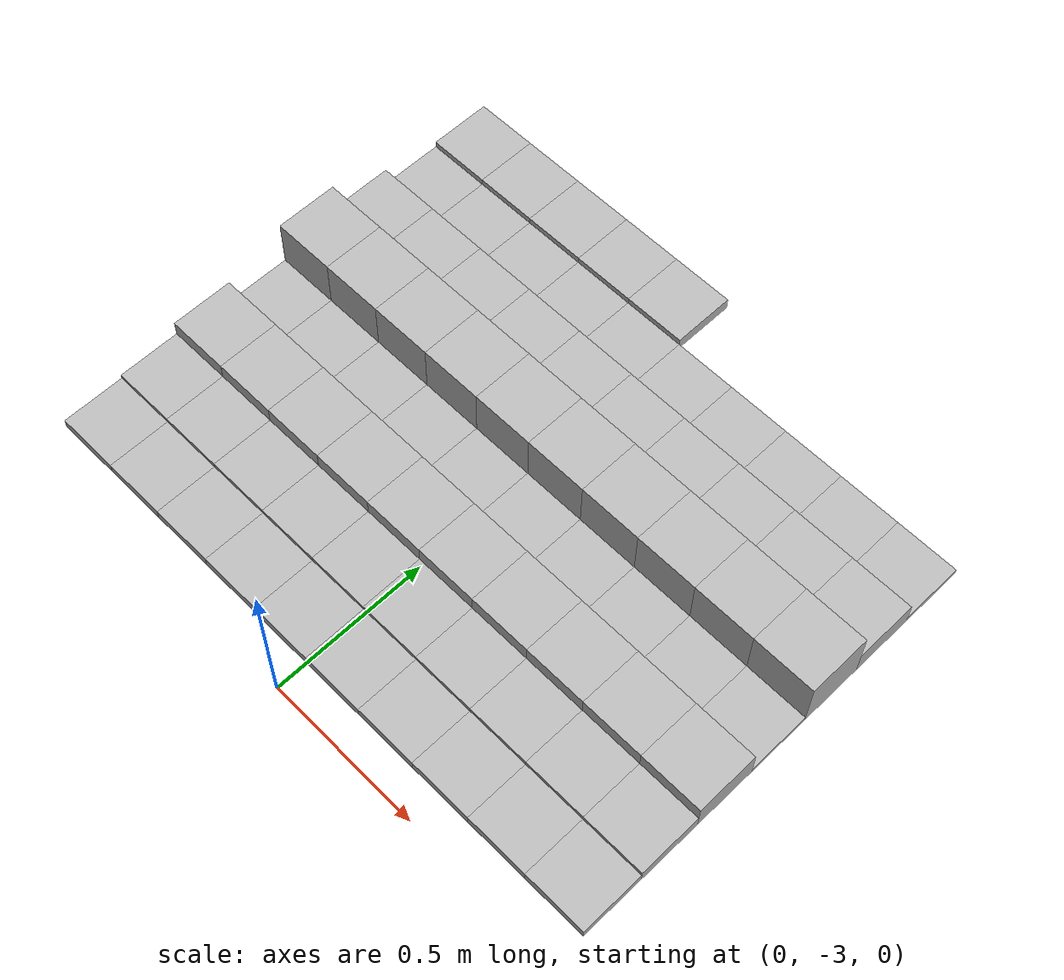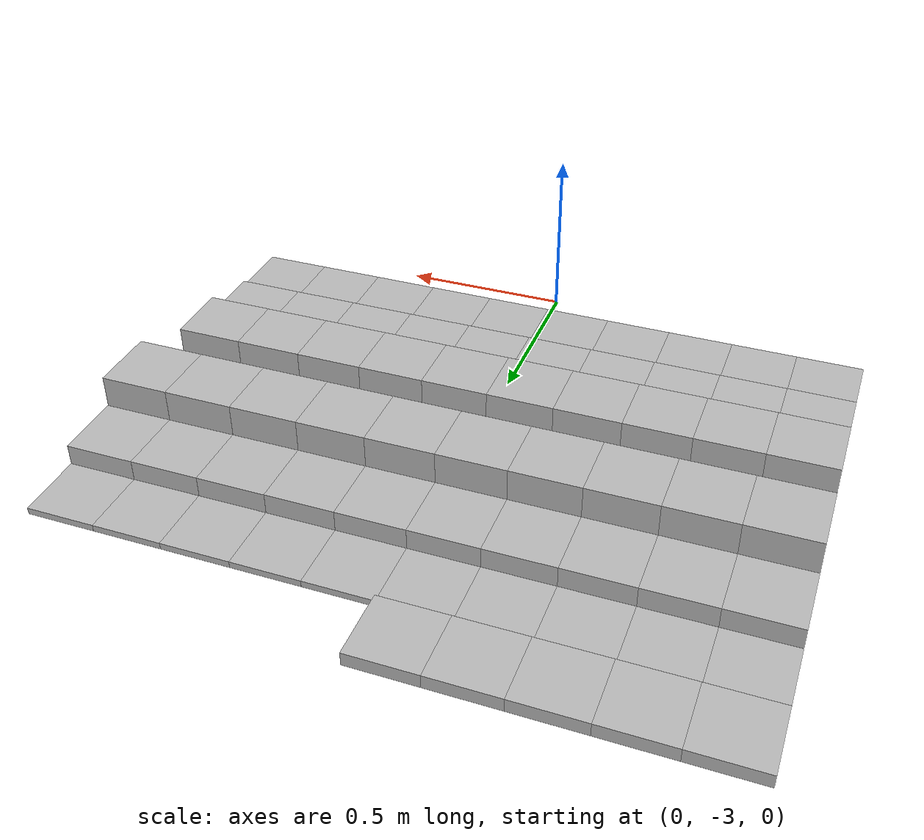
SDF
<sdf version="1.6">
 <model name="Terrain">
  <static>true</static>
  <link name="box_7_0">
   <pose>-0.9 -1.4 0.0198817768 0 0 0</pose>
   <inertial>
    <mass>1.0</mass>
    <inertia><ixx>0.0</ixx><ixy>0.0</ixy><ixz>0.0</ixz><iyy>0.0</iyy><iyz>0.0</iyz><izz>0.0</izz></inertia>
   </inertial>
   <collision name="collision"><geometry><box><size>0.2 0.2 0.0397635536</size></box></geometry></collision>
   <visual name="visual"><geometry><box><size>0.2 0.2 0.0397635536</size></box></geometry></visual>
  </link>
  <link name="box_7_1">
   <pose>-0.7 -1.4 0.0198817768 0 0 0</pose>
   <inertial>
    <mass>1.0</mass>
    <inertia><ixx>0.0</ixx><ixy>0.0</ixy><ixz>0.0</ixz><iyy>0.0</iyy><iyz>0.0</iyz><izz>0.0</izz></inertia>
   </inertial>
   <collision name="collision"><geometry><box><size>0.2 0.2 0.0397635536</size></box></geometry></collision>
   <visual name="visual"><geometry><box><size>0.2 0.2 0.0397635536</size></box></geometry></visual>
  </link>
  <link name="box_7_2">
   <pose>-0.5 -1.4 0.0198817768 0 0 0</pose>
   <inertial>
    <mass>1.0</mass>
    <inertia><ixx>0.0</ixx><ixy>0.0</ixy><ixz>0.0</ixz><iyy>0.0</iyy><iyz>0.0</iyz><izz>0.0</izz></inertia>
   </inertial>
   <collision name="collision"><geometry><box><size>0.2 0.2 0.0397635536</size></box></geometry></collision>
   <visual name="visual"><geometry><box><size>0.2 0.2 0.0397635536</size></box></geometry></visual>
  </link>
  <link name="box_7_3">
   <pose>-0.3 -1.4 0.0198817768 0 0 0</pose>
   <inertial>
    <mass>1.0</mass>
    <inertia><ixx>0.0</ixx><ixy>0.0</ixy><ixz>0.0</ixz><iyy>0.0</iyy><iyz>0.0</iyz><izz>0.0</izz></inertia>
   </inertial>
   <collision name="collision"><geometry><box><size>0.2 0.2 0.0397635536</size></box></geometry></collision>
   <visual name="visual"><geometry><box><size>0.2 0.2 0.0397635536</size></box></geometry></visual>
  </link>
  <link name="box_7_4">
   <pose>-0.1 -1.4 0.0198817768 0 0 0</pose>
   <inertial>
    <mass>1.0</mass>
    <inertia><ixx>0.0</ixx><ixy>0.0</ixy><ixz>0.0</ixz><iyy>0.0</iyy><iyz>0.0</iyz><izz>0.0</izz></inertia>
   </inertial>
   <collision name="collision"><geometry><box><size>0.2 0.2 0.0397635536</size></box></geometry></collision>
   <visual name="visual"><geometry><box><size>0.2 0.2 0.0397635536</size></box></geometry></visual>
  </link>
  <link name="box_8_0">
   <pose>-0.9 -1.6 0.00974434359942 0 0 0</pose>
   <inertial>
    <mass>1.0</mass>
    <inertia><ixx>0.0</ixx><ixy>0.0</ixy><ixz>0.0</ixz><iyy>0.0</iyy><iyz>0.0</iyz><izz>0.0</izz></inertia>
   </inertial>
   <collision name="collision"><geometry><box><size>0.2 0.2 0.0194886871988</size></box></geometry></collision>
   <visual name="visual"><geometry><box><size>0.2 0.2 0.0194886871988</size></box></geometry></visual>
  </link>
  <link name="box_8_1">
   <pose>-0.7 -1.6 0.00974434359942 0 0 0</pose>
   <inertial>
    <mass>1.0</mass>
    <inertia><ixx>0.0</ixx><ixy>0.0</ixy><ixz>0.0</ixz><iyy>0.0</iyy><iyz>0.0</iyz><izz>0.0</izz></inertia>
   </inertial>
   <collision name="collision"><geometry><box><size>0.2 0.2 0.0194886871988</size></box></geometry></collision>
   <visual name="visual"><geometry><box><size>0.2 0.2 0.0194886871988</size></box></geometry></visual>
  </link>
  <link name="box_8_2">
   <pose>-0.5 -1.6 0.00974434359942 0 0 0</pose>
   <inertial>
    <mass>1.0</mass>
    <inertia><ixx>0.0</ixx><ixy>0.0</ixy><ixz>0.0</ixz><iyy>0.0</iyy><iyz>0.0</iyz><izz>0.0</izz></inertia>
   </inertial>
   <collision name="collision"><geometry><box><size>0.2 0.2 0.0194886871988</size></box></geometry></collision>
   <visual name="visual"><geometry><box><size>0.2 0.2 0.0194886871988</size></box></geometry></visual>
  </link>
  <link name="box_8_3">
   <pose>-0.3 -1.6 0.00974434359942 0 0 0</pose>
   <inertial>
    <mass>1.0</mass>
    <inertia><ixx>0.0</ixx><ixy>0.0</ixy><ixz>0.0</ixz><iyy>0.0</iyy><iyz>0.0</iyz><izz>0.0</izz></inertia>
   </inertial>
   <collision name="collision"><geometry><box><size>0.2 0.2 0.0194886871988</size></box></geometry></collision>
   <visual name="visual"><geometry><box><size>0.2 0.2 0.0194886871988</size></box></geometry></visual>
  </link>
  <link name="box_8_4">
   <pose>-0.1 -1.6 0.00974434359942 0 0 0</pose>
   <inertial>
    <mass>1.0</mass>
    <inertia><ixx>0.0</ixx><ixy>0.0</ixy><ixz>0.0</ixz><iyy>0.0</iyy><iyz>0.0</iyz><izz>0.0</izz></inertia>
   </inertial>
   <collision name="collision"><geometry><box><size>0.2 0.2 0.0194886871988</size></box></geometry></collision>
   <visual name="visual"><geometry><box><size>0.2 0.2 0.0194886871988</size></box></geometry></visual>
  </link>
  <link name="box_8_5">
   <pose>0.1 -1.6 0.00974434359942 0 0 0</pose>
   <inertial>
    <mass>1.0</mass>
    <inertia><ixx>0.0</ixx><ixy>0.0</ixy><ixz>0.0</ixz><iyy>0.0</iyy><iyz>0.0</iyz><izz>0.0</izz></inertia>
   </inertial>
   <collision name="collision"><geometry><box><size>0.2 0.2 0.0194886871988</size></box></geometry></collision>
   <visual name="visual"><geometry><box><size>0.2 0.2 0.0194886871988</size></box></geometry></visual>
  </link>
  <link name="box_8_6">
   <pose>0.3 -1.6 0.00974434359942 0 0 0</pose>
   <inertial>
    <mass>1.0</mass>
    <inertia><ixx>0.0</ixx><ixy>0.0</ixy><ixz>0.0</ixz><iyy>0.0</iyy><iyz>0.0</iyz><izz>0.0</izz></inertia>
   </inertial>
   <collision name="collision"><geometry><box><size>0.2 0.2 0.0194886871988</size></box></geometry></collision>
   <visual name="visual"><geometry><box><size>0.2 0.2 0.0194886871988</size></box></geometry></visual>
  </link>
  <link name="box_8_7">
   <pose>0.5 -1.6 0.00974434359942 0 0 0</pose>
   <inertial>
    <mass>1.0</mass>
    <inertia><ixx>0.0</ixx><ixy>0.0</ixy><ixz>0.0</ixz><iyy>0.0</iyy><iyz>0.0</iyz><izz>0.0</izz></inertia>
   </inertial>
   <collision name="collision"><geometry><box><size>0.2 0.2 0.0194886871988</size></box></geometry></collision>
   <visual name="visual"><geometry><box><size>0.2 0.2 0.0194886871988</size></box></geometry></visual>
  </link>
  <link name="box_8_8">
   <pose>0.7 -1.6 0.00974434359942 0 0 0</pose>
   <inertial>
    <mass>1.0</mass>
    <inertia><ixx>0.0</ixx><ixy>0.0</ixy><ixz>0.0</ixz><iyy>0.0</iyy><iyz>0.0</iyz><izz>0.0</izz></inertia>
   </inertial>
   <collision name="collision"><geometry><box><size>0.2 0.2 0.0194886871988</size></box></geometry></collision>
   <visual name="visual"><geometry><box><size>0.2 0.2 0.0194886871988</size></box></geometry></visual>
  </link>
  <link name="box_8_9">
   <pose>0.9 -1.6 0.00974434359942 0 0 0</pose>
   <inertial>
    <mass>1.0</mass>
    <inertia><ixx>0.0</ixx><ixy>0.0</ixy><ixz>0.0</ixz><iyy>0.0</iyy><iyz>0.0</iyz><izz>0.0</izz></inertia>
   </inertial>
   <collision name="collision"><geometry><box><size>0.2 0.2 0.0194886871988</size></box></geometry></collision>
   <visual name="visual"><geometry><box><size>0.2 0.2 0.0194886871988</size></box></geometry></visual>
  </link>
  <link name="box_9_0">
   <pose>-0.9 -1.8 0.0403597626849 0 0 0</pose>
   <inertial>
    <mass>1.0</mass>
    <inertia><ixx>0.0</ixx><ixy>0.0</ixy><ixz>0.0</ixz><iyy>0.0</iyy><iyz>0.0</iyz><izz>0.0</izz></inertia>
   </inertial>
   <collision name="collision"><geometry><box><size>0.2 0.2 0.0807195253699</size></box></geometry></collision>
   <visual name="visual"><geometry><box><size>0.2 0.2 0.0807195253699</size></box></geometry></visual>
  </link>
  <link name="box_9_1">
   <pose>-0.7 -1.8 0.0403597626849 0 0 0</pose>
   <inertial>
    <mass>1.0</mass>
    <inertia><ixx>0.0</ixx><ixy>0.0</ixy><ixz>0.0</ixz><iyy>0.0</iyy><iyz>0.0</iyz><izz>0.0</izz></inertia>
   </inertial>
   <collision name="collision"><geometry><box><size>0.2 0.2 0.0807195253699</size></box></geometry></collision>
   <visual name="visual"><geometry><box><size>0.2 0.2 0.0807195253699</size></box></geometry></visual>
  </link>
  <link name="box_9_2">
   <pose>-0.5 -1.8 0.0403597626849 0 0 0</pose>
   <inertial>
    <mass>1.0</mass>
    <inertia><ixx>0.0</ixx><ixy>0.0</ixy><ixz>0.0</ixz><iyy>0.0</iyy><iyz>0.0</iyz><izz>0.0</izz></inertia>
   </inertial>
   <collision name="collision"><geometry><box><size>0.2 0.2 0.0807195253699</size></box></geometry></collision>
   <visual name="visual"><geometry><box><size>0.2 0.2 0.0807195253699</size></box></geometry></visual>
  </link>
  <link name="box_9_3">
   <pose>-0.3 -1.8 0.0403597626849 0 0 0</pose>
   <inertial>
    <mass>1.0</mass>
    <inertia><ixx>0.0</ixx><ixy>0.0</ixy><ixz>0.0</ixz><iyy>0.0</iyy><iyz>0.0</iyz><izz>0.0</izz></inertia>
   </inertial>
   <collision name="collision"><geometry><box><size>0.2 0.2 0.0807195253699</size></box></geometry></collision>
   <visual name="visual"><geometry><box><size>0.2 0.2 0.0807195253699</size></box></geometry></visual>
  </link>
  <link name="box_9_4">
   <pose>-0.1 -1.8 0.0403597626849 0 0 0</pose>
   <inertial>
    <mass>1.0</mass>
    <inertia><ixx>0.0</ixx><ixy>0.0</ixy><ixz>0.0</ixz><iyy>0.0</iyy><iyz>0.0</iyz><izz>0.0</izz></inertia>
   </inertial>
   <collision name="collision"><geometry><box><size>0.2 0.2 0.0807195253699</size></box></geometry></collision>
   <visual name="visual"><geometry><box><size>0.2 0.2 0.0807195253699</size></box></geometry></visual>
  </link>
  <link name="box_9_5">
   <pose>0.1 -1.8 0.0403597626849 0 0 0</pose>
   <inertial>
    <mass>1.0</mass>
    <inertia><ixx>0.0</ixx><ixy>0.0</ixy><ixz>0.0</ixz><iyy>0.0</iyy><iyz>0.0</iyz><izz>0.0</izz></inertia>
   </inertial>
   <collision name="collision"><geometry><box><size>0.2 0.2 0.0807195253699</size></box></geometry></collision>
   <visual name="visual"><geometry><box><size>0.2 0.2 0.0807195253699</size></box></geometry></visual>
  </link>
  <link name="box_9_6">
   <pose>0.3 -1.8 0.0403597626849 0 0 0</pose>
   <inertial>
    <mass>1.0</mass>
    <inertia><ixx>0.0</ixx><ixy>0.0</ixy><ixz>0.0</ixz><iyy>0.0</iyy><iyz>0.0</iyz><izz>0.0</izz></inertia>
   </inertial>
   <collision name="collision"><geometry><box><size>0.2 0.2 0.0807195253699</size></box></geometry></collision>
   <visual name="visual"><geometry><box><size>0.2 0.2 0.0807195253699</size></box></geometry></visual>
  </link>
  <link name="box_9_7">
   <pose>0.5 -1.8 0.0403597626849 0 0 0</pose>
   <inertial>
    <mass>1.0</mass>
    <inertia><ixx>0.0</ixx><ixy>0.0</ixy><ixz>0.0</ixz><iyy>0.0</iyy><iyz>0.0</iyz><izz>0.0</izz></inertia>
   </inertial>
   <collision name="collision"><geometry><box><size>0.2 0.2 0.0807195253699</size></box></geometry></collision>
   <visual name="visual"><geometry><box><size>0.2 0.2 0.0807195253699</size></box></geometry></visual>
  </link>
  <link name="box_9_8">
   <pose>0.7 -1.8 0.0403597626849 0 0 0</pose>
   <inertial>
    <mass>1.0</mass>
    <inertia><ixx>0.0</ixx><ixy>0.0</ixy><ixz>0.0</ixz><iyy>0.0</iyy><iyz>0.0</iyz><izz>0.0</izz></inertia>
   </inertial>
   <collision name="collision"><geometry><box><size>0.2 0.2 0.0807195253699</size></box></geometry></collision>
   <visual name="visual"><geometry><box><size>0.2 0.2 0.0807195253699</size></box></geometry></visual>
  </link>
  <link name="box_9_9">
   <pose>0.9 -1.8 0.0403597626849 0 0 0</pose>
   <inertial>
    <mass>1.0</mass>
    <inertia><ixx>0.0</ixx><ixy>0.0</ixy><ixz>0.0</ixz><iyy>0.0</iyy><iyz>0.0</iyz><izz>0.0</izz></inertia>
   </inertial>
   <collision name="collision"><geometry><box><size>0.2 0.2 0.0807195253699</size></box></geometry></collision>
   <visual name="visual"><geometry><box><size>0.2 0.2 0.0807195253699</size></box></geometry></visual>
  </link>
  <link name="box_10_0">
   <pose>-0.9 -2.0 0.0879328409259 0 0 0</pose>
   <inertial>
    <mass>1.0</mass>
    <inertia><ixx>0.0</ixx><ixy>0.0</ixy><ixz>0.0</ixz><iyy>0.0</iyy><iyz>0.0</iyz><izz>0.0</izz></inertia>
   </inertial>
   <collision name="collision"><geometry><box><size>0.2 0.2 0.175865681852</size></box></geometry></collision>
   <visual name="visual"><geometry><box><size>0.2 0.2 0.175865681852</size></box></geometry></visual>
  </link>
  <link name="box_10_1">
   <pose>-0.7 -2.0 0.0879328409259 0 0 0</pose>
   <inertial>
    <mass>1.0</mass>
    <inertia><ixx>0.0</ixx><ixy>0.0</ixy><ixz>0.0</ixz><iyy>0.0</iyy><iyz>0.0</iyz><izz>0.0</izz></inertia>
   </inertial>
   <collision name="collision"><geometry><box><size>0.2 0.2 0.175865681852</size></box></geometry></collision>
   <visual name="visual"><geometry><box><size>0.2 0.2 0.175865681852</size></box></geometry></visual>
  </link>
  <link name="box_10_2">
   <pose>-0.5 -2.0 0.0879328409259 0 0 0</pose>
   <inertial>
    <mass>1.0</mass>
    <inertia><ixx>0.0</ixx><ixy>0.0</ixy><ixz>0.0</ixz><iyy>0.0</iyy><iyz>0.0</iyz><izz>0.0</izz></inertia>
   </inertial>
   <collision name="collision"><geometry><box><size>0.2 0.2 0.175865681852</size></box></geometry></collision>
   <visual name="visual"><geometry><box><size>0.2 0.2 0.175865681852</size></box></geometry></visual>
  </link>
  <link name="box_10_3">
   <pose>-0.3 -2.0 0.0879328409259 0 0 0</pose>
   <inertial>
    <mass>1.0</mass>
    <inertia><ixx>0.0</ixx><ixy>0.0</ixy><ixz>0.0</ixz><iyy>0.0</iyy><iyz>0.0</iyz><izz>0.0</izz></inertia>
   </inertial>
   <collision name="collision"><geometry><box><size>0.2 0.2 0.175865681852</size></box></geometry></collision>
   <visual name="visual"><geometry><box><size>0.2 0.2 0.175865681852</size></box></geometry></visual>
  </link>
  <link name="box_10_4">
   <pose>-0.1 -2.0 0.0879328409259 0 0 0</pose>
   <inertial>
    <mass>1.0</mass>
    <inertia><ixx>0.0</ixx><ixy>0.0</ixy><ixz>0.0</ixz><iyy>0.0</iyy><iyz>0.0</iyz><izz>0.0</izz></inertia>
   </inertial>
   <collision name="collision"><geometry><box><size>0.2 0.2 0.175865681852</size></box></geometry></collision>
   <visual name="visual"><geometry><box><size>0.2 0.2 0.175865681852</size></box></geometry></visual>
  </link>
  <link name="box_10_5">
   <pose>0.1 -2.0 0.0879328409259 0 0 0</pose>
   <inertial>
    <mass>1.0</mass>
    <inertia><ixx>0.0</ixx><ixy>0.0</ixy><ixz>0.0</ixz><iyy>0.0</iyy><iyz>0.0</iyz><izz>0.0</izz></inertia>
   </inertial>
   <collision name="collision"><geometry><box><size>0.2 0.2 0.175865681852</size></box></geometry></collision>
   <visual name="visual"><geometry><box><size>0.2 0.2 0.175865681852</size></box></geometry></visual>
  </link>
  <link name="box_10_6">
   <pose>0.3 -2.0 0.0879328409259 0 0 0</pose>
   <inertial>
    <mass>1.0</mass>
    <inertia><ixx>0.0</ixx><ixy>0.0</ixy><ixz>0.0</ixz><iyy>0.0</iyy><iyz>0.0</iyz><izz>0.0</izz></inertia>
   </inertial>
   <collision name="collision"><geometry><box><size>0.2 0.2 0.175865681852</size></box></geometry></collision>
   <visual name="visual"><geometry><box><size>0.2 0.2 0.175865681852</size></box></geometry></visual>
  </link>
  <link name="box_10_7">
   <pose>0.5 -2.0 0.0879328409259 0 0 0</pose>
   <inertial>
    <mass>1.0</mass>
    <inertia><ixx>0.0</ixx><ixy>0.0</ixy><ixz>0.0</ixz><iyy>0.0</iyy><iyz>0.0</iyz><izz>0.0</izz></inertia>
   </inertial>
   <collision name="collision"><geometry><box><size>0.2 0.2 0.175865681852</size></box></geometry></collision>
   <visual name="visual"><geometry><box><size>0.2 0.2 0.175865681852</size></box></geometry></visual>
  </link>
  <link name="box_10_8">
   <pose>0.7 -2.0 0.0879328409259 0 0 0</pose>
   <inertial>
    <mass>1.0</mass>
    <inertia><ixx>0.0</ixx><ixy>0.0</ixy><ixz>0.0</ixz><iyy>0.0</iyy><iyz>0.0</iyz><izz>0.0</izz></inertia>
   </inertial>
   <collision name="collision"><geometry><box><size>0.2 0.2 0.175865681852</size></box></geometry></collision>
   <visual name="visual"><geometry><box><size>0.2 0.2 0.175865681852</size></box></geometry></visual>
  </link>
  <link name="box_10_9">
   <pose>0.9 -2.0 0.0879328409259 0 0 0</pose>
   <inertial>
    <mass>1.0</mass>
    <inertia><ixx>0.0</ixx><ixy>0.0</ixy><ixz>0.0</ixz><iyy>0.0</iyy><iyz>0.0</iyz><izz>0.0</izz></inertia>
   </inertial>
   <collision name="collision"><geometry><box><size>0.2 0.2 0.175865681852</size></box></geometry></collision>
   <visual name="visual"><geometry><box><size>0.2 0.2 0.175865681852</size></box></geometry></visual>
  </link>
  <link name="box_11_0">
   <pose>-0.9 -2.2 0.00774697874785 0 0 0</pose>
   <inertial>
    <mass>1.0</mass>
    <inertia><ixx>0.0</ixx><ixy>0.0</ixy><ixz>0.0</ixz><iyy>0.0</iyy><iyz>0.0</iyz><izz>0.0</izz></inertia>
   </inertial>
   <collision name="collision"><geometry><box><size>0.2 0.2 0.0154939574957</size></box></geometry></collision>
   <visual name="visual"><geometry><box><size>0.2 0.2 0.0154939574957</size></box></geometry></visual>
  </link>
  <link name="box_11_1">
   <pose>-0.7 -2.2 0.00774697874785 0 0 0</pose>
   <inertial>
    <mass>1.0</mass>
    <inertia><ixx>0.0</ixx><ixy>0.0</ixy><ixz>0.0</ixz><iyy>0.0</iyy><iyz>0.0</iyz><izz>0.0</izz></inertia>
   </inertial>
   <collision name="collision"><geometry><box><size>0.2 0.2 0.0154939574957</size></box></geometry></collision>
   <visual name="visual"><geometry><box><size>0.2 0.2 0.0154939574957</size></box></geometry></visual>
  </link>
  <link name="box_11_2">
   <pose>-0.5 -2.2 0.00774697874785 0 0 0</pose>
   <inertial>
    <mass>1.0</mass>
    <inertia><ixx>0.0</ixx><ixy>0.0</ixy><ixz>0.0</ixz><iyy>0.0</iyy><iyz>0.0</iyz><izz>0.0</izz></inertia>
   </inertial>
   <collision name="collision"><geometry><box><size>0.2 0.2 0.0154939574957</size></box></geometry></collision>
   <visual name="visual"><geometry><box><size>0.2 0.2 0.0154939574957</size></box></geometry></visual>
  </link>
  <link name="box_11_3">
   <pose>-0.3 -2.2 0.00774697874785 0 0 0</pose>
   <inertial>
    <mass>1.0</mass>
    <inertia><ixx>0.0</ixx><ixy>0.0</ixy><ixz>0.0</ixz><iyy>0.0</iyy><iyz>0.0</iyz><izz>0.0</izz></inertia>
   </inertial>
   <collision name="collision"><geometry><box><size>0.2 0.2 0.0154939574957</size></box></geometry></collision>
   <visual name="visual"><geometry><box><size>0.2 0.2 0.0154939574957</size></box></geometry></visual>
  </link>
  <link name="box_11_4">
   <pose>-0.1 -2.2 0.00774697874785 0 0 0</pose>
   <inertial>
    <mass>1.0</mass>
    <inertia><ixx>0.0</ixx><ixy>0.0</ixy><ixz>0.0</ixz><iyy>0.0</iyy><iyz>0.0</iyz><izz>0.0</izz></inertia>
   </inertial>
   <collision name="collision"><geometry><box><size>0.2 0.2 0.0154939574957</size></box></geometry></collision>
   <visual name="visual"><geometry><box><size>0.2 0.2 0.0154939574957</size></box></geometry></visual>
  </link>
  <link name="box_11_5">
   <pose>0.1 -2.2 0.00774697874785 0 0 0</pose>
   <inertial>
    <mass>1.0</mass>
    <inertia><ixx>0.0</ixx><ixy>0.0</ixy><ixz>0.0</ixz><iyy>0.0</iyy><iyz>0.0</iyz><izz>0.0</izz></inertia>
   </inertial>
   <collision name="collision"><geometry><box><size>0.2 0.2 0.0154939574957</size></box></geometry></collision>
   <visual name="visual"><geometry><box><size>0.2 0.2 0.0154939574957</size></box></geometry></visual>
  </link>
  <link name="box_11_6">
   <pose>0.3 -2.2 0.00774697874785 0 0 0</pose>
   <inertial>
    <mass>1.0</mass>
    <inertia><ixx>0.0</ixx><ixy>0.0</ixy><ixz>0.0</ixz><iyy>0.0</iyy><iyz>0.0</iyz><izz>0.0</izz></inertia>
   </inertial>
   <collision name="collision"><geometry><box><size>0.2 0.2 0.0154939574957</size></box></geometry></collision>
   <visual name="visual"><geometry><box><size>0.2 0.2 0.0154939574957</size></box></geometry></visual>
  </link>
  <link name="box_11_7">
   <pose>0.5 -2.2 0.00774697874785 0 0 0</pose>
   <inertial>
    <mass>1.0</mass>
    <inertia><ixx>0.0</ixx><ixy>0.0</ixy><ixz>0.0</ixz><iyy>0.0</iyy><iyz>0.0</iyz><izz>0.0</izz></inertia>
   </inertial>
   <collision name="collision"><geometry><box><size>0.2 0.2 0.0154939574957</size></box></geometry></collision>
   <visual name="visual"><geometry><box><size>0.2 0.2 0.0154939574957</size></box></geometry></visual>
  </link>
  <link name="box_11_8">
   <pose>0.7 -2.2 0.00774697874785 0 0 0</pose>
   <inertial>
    <mass>1.0</mass>
    <inertia><ixx>0.0</ixx><ixy>0.0</ixy><ixz>0.0</ixz><iyy>0.0</iyy><iyz>0.0</iyz><izz>0.0</izz></inertia>
   </inertial>
   <collision name="collision"><geometry><box><size>0.2 0.2 0.0154939574957</size></box></geometry></collision>
   <visual name="visual"><geometry><box><size>0.2 0.2 0.0154939574957</size></box></geometry></visual>
  </link>
  <link name="box_11_9">
   <pose>0.9 -2.2 0.00774697874785 0 0 0</pose>
   <inertial>
    <mass>1.0</mass>
    <inertia><ixx>0.0</ixx><ixy>0.0</ixy><ixz>0.0</ixz><iyy>0.0</iyy><iyz>0.0</iyz><izz>0.0</izz></inertia>
   </inertial>
   <collision name="collision"><geometry><box><size>0.2 0.2 0.0154939574957</size></box></geometry></collision>
   <visual name="visual"><geometry><box><size>0.2 0.2 0.0154939574957</size></box></geometry></visual>
  </link>
  <link name="box_12_0">
   <pose>-0.9 -2.4 0.048160367487 0 0 0</pose>
   <inertial>
    <mass>1.0</mass>
    <inertia><ixx>0.0</ixx><ixy>0.0</ixy><ixz>0.0</ixz><iyy>0.0</iyy><iyz>0.0</iyz><izz>0.0</izz></inertia>
   </inertial>
   <collision name="collision"><geometry><box><size>0.2 0.2 0.0963207349739</size></box></geometry></collision>
   <visual name="visual"><geometry><box><size>0.2 0.2 0.0963207349739</size></box></geometry></visual>
  </link>
  <link name="box_12_1">
   <pose>-0.7 -2.4 0.048160367487 0 0 0</pose>
   <inertial>
    <mass>1.0</mass>
    <inertia><ixx>0.0</ixx><ixy>0.0</ixy><ixz>0.0</ixz><iyy>0.0</iyy><iyz>0.0</iyz><izz>0.0</izz></inertia>
   </inertial>
   <collision name="collision"><geometry><box><size>0.2 0.2 0.0963207349739</size></box></geometry></collision>
   <visual name="visual"><geometry><box><size>0.2 0.2 0.0963207349739</size></box></geometry></visual>
  </link>
  <link name="box_12_2">
   <pose>-0.5 -2.4 0.048160367487 0 0 0</pose>
   <inertial>
    <mass>1.0</mass>
    <inertia><ixx>0.0</ixx><ixy>0.0</ixy><ixz>0.0</ixz><iyy>0.0</iyy><iyz>0.0</iyz><izz>0.0</izz></inertia>
   </inertial>
   <collision name="collision"><geometry><box><size>0.2 0.2 0.0963207349739</size></box></geometry></collision>
   <visual name="visual"><geometry><box><size>0.2 0.2 0.0963207349739</size></box></geometry></visual>
  </link>
  <link name="box_12_3">
   <pose>-0.3 -2.4 0.048160367487 0 0 0</pose>
   <inertial>
    <mass>1.0</mass>
    <inertia><ixx>0.0</ixx><ixy>0.0</ixy><ixz>0.0</ixz><iyy>0.0</iyy><iyz>0.0</iyz><izz>0.0</izz></inertia>
   </inertial>
   <collision name="collision"><geometry><box><size>0.2 0.2 0.0963207349739</size></box></geometry></collision>
   <visual name="visual"><geometry><box><size>0.2 0.2 0.0963207349739</size></box></geometry></visual>
  </link>
  <link name="box_12_4">
   <pose>-0.1 -2.4 0.048160367487 0 0 0</pose>
   <inertial>
    <mass>1.0</mass>
    <inertia><ixx>0.0</ixx><ixy>0.0</ixy><ixz>0.0</ixz><iyy>0.0</iyy><iyz>0.0</iyz><izz>0.0</izz></inertia>
   </inertial>
   <collision name="collision"><geometry><box><size>0.2 0.2 0.0963207349739</size></box></geometry></collision>
   <visual name="visual"><geometry><box><size>0.2 0.2 0.0963207349739</size></box></geometry></visual>
  </link>
  <link name="box_12_5">
   <pose>0.1 -2.4 0.048160367487 0 0 0</pose>
   <inertial>
    <mass>1.0</mass>
    <inertia><ixx>0.0</ixx><ixy>0.0</ixy><ixz>0.0</ixz><iyy>0.0</iyy><iyz>0.0</iyz><izz>0.0</izz></inertia>
   </inertial>
   <collision name="collision"><geometry><box><size>0.2 0.2 0.0963207349739</size></box></geometry></collision>
   <visual name="visual"><geometry><box><size>0.2 0.2 0.0963207349739</size></box></geometry></visual>
  </link>
  <link name="box_12_6">
   <pose>0.3 -2.4 0.048160367487 0 0 0</pose>
   <inertial>
    <mass>1.0</mass>
    <inertia><ixx>0.0</ixx><ixy>0.0</ixy><ixz>0.0</ixz><iyy>0.0</iyy><iyz>0.0</iyz><izz>0.0</izz></inertia>
   </inertial>
   <collision name="collision"><geometry><box><size>0.2 0.2 0.0963207349739</size></box></geometry></collision>
   <visual name="visual"><geometry><box><size>0.2 0.2 0.0963207349739</size></box></geometry></visual>
  </link>
  <link name="box_12_7">
   <pose>0.5 -2.4 0.048160367487 0 0 0</pose>
   <inertial>
    <mass>1.0</mass>
    <inertia><ixx>0.0</ixx><ixy>0.0</ixy><ixz>0.0</ixz><iyy>0.0</iyy><iyz>0.0</iyz><izz>0.0</izz></inertia>
   </inertial>
   <collision name="collision"><geometry><box><size>0.2 0.2 0.0963207349739</size></box></geometry></collision>
   <visual name="visual"><geometry><box><size>0.2 0.2 0.0963207349739</size></box></geometry></visual>
  </link>
  <link name="box_12_8">
   <pose>0.7 -2.4 0.048160367487 0 0 0</pose>
   <inertial>
    <mass>1.0</mass>
    <inertia><ixx>0.0</ixx><ixy>0.0</ixy><ixz>0.0</ixz><iyy>0.0</iyy><iyz>0.0</iyz><izz>0.0</izz></inertia>
   </inertial>
   <collision name="collision"><geometry><box><size>0.2 0.2 0.0963207349739</size></box></geometry></collision>
   <visual name="visual"><geometry><box><size>0.2 0.2 0.0963207349739</size></box></geometry></visual>
  </link>
  <link name="box_12_9">
   <pose>0.9 -2.4 0.048160367487 0 0 0</pose>
   <inertial>
    <mass>1.0</mass>
    <inertia><ixx>0.0</ixx><ixy>0.0</ixy><ixz>0.0</ixz><iyy>0.0</iyy><iyz>0.0</iyz><izz>0.0</izz></inertia>
   </inertial>
   <collision name="collision"><geometry><box><size>0.2 0.2 0.0963207349739</size></box></geometry></collision>
   <visual name="visual"><geometry><box><size>0.2 0.2 0.0963207349739</size></box></geometry></visual>
  </link>
  <link name="box_13_0">
   <pose>-0.9 -2.6 0.0228257802424 0 0 0</pose>
   <inertial>
    <mass>1.0</mass>
    <inertia><ixx>0.0</ixx><ixy>0.0</ixy><ixz>0.0</ixz><iyy>0.0</iyy><iyz>0.0</iyz><izz>0.0</izz></inertia>
   </inertial>
   <collision name="collision"><geometry><box><size>0.2 0.2 0.0456515604849</size></box></geometry></collision>
   <visual name="visual"><geometry><box><size>0.2 0.2 0.0456515604849</size></box></geometry></visual>
  </link>
  <link name="box_13_1">
   <pose>-0.7 -2.6 0.0228257802424 0 0 0</pose>
   <inertial>
    <mass>1.0</mass>
    <inertia><ixx>0.0</ixx><ixy>0.0</ixy><ixz>0.0</ixz><iyy>0.0</iyy><iyz>0.0</iyz><izz>0.0</izz></inertia>
   </inertial>
   <collision name="collision"><geometry><box><size>0.2 0.2 0.0456515604849</size></box></geometry></collision>
   <visual name="visual"><geometry><box><size>0.2 0.2 0.0456515604849</size></box></geometry></visual>
  </link>
  <link name="box_13_2">
   <pose>-0.5 -2.6 0.0228257802424 0 0 0</pose>
   <inertial>
    <mass>1.0</mass>
    <inertia><ixx>0.0</ixx><ixy>0.0</ixy><ixz>0.0</ixz><iyy>0.0</iyy><iyz>0.0</iyz><izz>0.0</izz></inertia>
   </inertial>
   <collision name="collision"><geometry><box><size>0.2 0.2 0.0456515604849</size></box></geometry></collision>
   <visual name="visual"><geometry><box><size>0.2 0.2 0.0456515604849</size></box></geometry></visual>
  </link>
  <link name="box_13_3">
   <pose>-0.3 -2.6 0.0228257802424 0 0 0</pose>
   <inertial>
    <mass>1.0</mass>
    <inertia><ixx>0.0</ixx><ixy>0.0</ixy><ixz>0.0</ixz><iyy>0.0</iyy><iyz>0.0</iyz><izz>0.0</izz></inertia>
   </inertial>
   <collision name="collision"><geometry><box><size>0.2 0.2 0.0456515604849</size></box></geometry></collision>
   <visual name="visual"><geometry><box><size>0.2 0.2 0.0456515604849</size></box></geometry></visual>
  </link>
  <link name="box_13_4">
   <pose>-0.1 -2.6 0.0228257802424 0 0 0</pose>
   <inertial>
    <mass>1.0</mass>
    <inertia><ixx>0.0</ixx><ixy>0.0</ixy><ixz>0.0</ixz><iyy>0.0</iyy><iyz>0.0</iyz><izz>0.0</izz></inertia>
   </inertial>
   <collision name="collision"><geometry><box><size>0.2 0.2 0.0456515604849</size></box></geometry></collision>
   <visual name="visual"><geometry><box><size>0.2 0.2 0.0456515604849</size></box></geometry></visual>
  </link>
  <link name="box_13_5">
   <pose>0.1 -2.6 0.0228257802424 0 0 0</pose>
   <inertial>
    <mass>1.0</mass>
    <inertia><ixx>0.0</ixx><ixy>0.0</ixy><ixz>0.0</ixz><iyy>0.0</iyy><iyz>0.0</iyz><izz>0.0</izz></inertia>
   </inertial>
   <collision name="collision"><geometry><box><size>0.2 0.2 0.0456515604849</size></box></geometry></collision>
   <visual name="visual"><geometry><box><size>0.2 0.2 0.0456515604849</size></box></geometry></visual>
  </link>
  <link name="box_13_6">
   <pose>0.3 -2.6 0.0228257802424 0 0 0</pose>
   <inertial>
    <mass>1.0</mass>
    <inertia><ixx>0.0</ixx><ixy>0.0</ixy><ixz>0.0</ixz><iyy>0.0</iyy><iyz>0.0</iyz><izz>0.0</izz></inertia>
   </inertial>
   <collision name="collision"><geometry><box><size>0.2 0.2 0.0456515604849</size></box></geometry></collision>
   <visual name="visual"><geometry><box><size>0.2 0.2 0.0456515604849</size></box></geometry></visual>
  </link>
  <link name="box_13_7">
   <pose>0.5 -2.6 0.0228257802424 0 0 0</pose>
   <inertial>
    <mass>1.0</mass>
    <inertia><ixx>0.0</ixx><ixy>0.0</ixy><ixz>0.0</ixz><iyy>0.0</iyy><iyz>0.0</iyz><izz>0.0</izz></inertia>
   </inertial>
   <collision name="collision"><geometry><box><size>0.2 0.2 0.0456515604849</size></box></geometry></collision>
   <visual name="visual"><geometry><box><size>0.2 0.2 0.0456515604849</size></box></geometry></visual>
  </link>
  <link name="box_13_8">
   <pose>0.7 -2.6 0.0228257802424 0 0 0</pose>
   <inertial>
    <mass>1.0</mass>
    <inertia><ixx>0.0</ixx><ixy>0.0</ixy><ixz>0.0</ixz><iyy>0.0</iyy><iyz>0.0</iyz><izz>0.0</izz></inertia>
   </inertial>
   <collision name="collision"><geometry><box><size>0.2 0.2 0.0456515604849</size></box></geometry></collision>
   <visual name="visual"><geometry><box><size>0.2 0.2 0.0456515604849</size></box></geometry></visual>
  </link>
  <link name="box_13_9">
   <pose>0.9 -2.6 0.0228257802424 0 0 0</pose>
   <inertial>
    <mass>1.0</mass>
    <inertia><ixx>0.0</ixx><ixy>0.0</ixy><ixz>0.0</ixz><iyy>0.0</iyy><iyz>0.0</iyz><izz>0.0</izz></inertia>
   </inertial>
   <collision name="collision"><geometry><box><size>0.2 0.2 0.0456515604849</size></box></geometry></collision>
   <visual name="visual"><geometry><box><size>0.2 0.2 0.0456515604849</size></box></geometry></visual>
  </link>
  <link name="box_14_0">
   <pose>-0.9 -2.8 0.0156633912526 0 0 0</pose>
   <inertial>
    <mass>1.0</mass>
    <inertia><ixx>0.0</ixx><ixy>0.0</ixy><ixz>0.0</ixz><iyy>0.0</iyy><iyz>0.0</iyz><izz>0.0</izz></inertia>
   </inertial>
   <collision name="collision"><geometry><box><size>0.2 0.2 0.0313267825052</size></box></geometry></collision>
   <visual name="visual"><geometry><box><size>0.2 0.2 0.0313267825052</size></box></geometry></visual>
  </link>
  <link name="box_14_1">
   <pose>-0.7 -2.8 0.0156633912526 0 0 0</pose>
   <inertial>
    <mass>1.0</mass>
    <inertia><ixx>0.0</ixx><ixy>0.0</ixy><ixz>0.0</ixz><iyy>0.0</iyy><iyz>0.0</iyz><izz>0.0</izz></inertia>
   </inertial>
   <collision name="collision"><geometry><box><size>0.2 0.2 0.0313267825052</size></box></geometry></collision>
   <visual name="visual"><geometry><box><size>0.2 0.2 0.0313267825052</size></box></geometry></visual>
  </link>
  <link name="box_14_2">
   <pose>-0.5 -2.8 0.0156633912526 0 0 0</pose>
   <inertial>
    <mass>1.0</mass>
    <inertia><ixx>0.0</ixx><ixy>0.0</ixy><ixz>0.0</ixz><iyy>0.0</iyy><iyz>0.0</iyz><izz>0.0</izz></inertia>
   </inertial>
   <collision name="collision"><geometry><box><size>0.2 0.2 0.0313267825052</size></box></geometry></collision>
   <visual name="visual"><geometry><box><size>0.2 0.2 0.0313267825052</size></box></geometry></visual>
  </link>
  <link name="box_14_3">
   <pose>-0.3 -2.8 0.0156633912526 0 0 0</pose>
   <inertial>
    <mass>1.0</mass>
    <inertia><ixx>0.0</ixx><ixy>0.0</ixy><ixz>0.0</ixz><iyy>0.0</iyy><iyz>0.0</iyz><izz>0.0</izz></inertia>
   </inertial>
   <collision name="collision"><geometry><box><size>0.2 0.2 0.0313267825052</size></box></geometry></collision>
   <visual name="visual"><geometry><box><size>0.2 0.2 0.0313267825052</size></box></geometry></visual>
  </link>
  <link name="box_14_4">
   <pose>-0.1 -2.8 0.0156633912526 0 0 0</pose>
   <inertial>
    <mass>1.0</mass>
    <inertia><ixx>0.0</ixx><ixy>0.0</ixy><ixz>0.0</ixz><iyy>0.0</iyy><iyz>0.0</iyz><izz>0.0</izz></inertia>
   </inertial>
   <collision name="collision"><geometry><box><size>0.2 0.2 0.0313267825052</size></box></geometry></collision>
   <visual name="visual"><geometry><box><size>0.2 0.2 0.0313267825052</size></box></geometry></visual>
  </link>
  <link name="box_14_5">
   <pose>0.1 -2.8 0.0156633912526 0 0 0</pose>
   <inertial>
    <mass>1.0</mass>
    <inertia><ixx>0.0</ixx><ixy>0.0</ixy><ixz>0.0</ixz><iyy>0.0</iyy><iyz>0.0</iyz><izz>0.0</izz></inertia>
   </inertial>
   <collision name="collision"><geometry><box><size>0.2 0.2 0.0313267825052</size></box></geometry></collision>
   <visual name="visual"><geometry><box><size>0.2 0.2 0.0313267825052</size></box></geometry></visual>
  </link>
  <link name="box_14_6">
   <pose>0.3 -2.8 0.0156633912526 0 0 0</pose>
   <inertial>
    <mass>1.0</mass>
    <inertia><ixx>0.0</ixx><ixy>0.0</ixy><ixz>0.0</ixz><iyy>0.0</iyy><iyz>0.0</iyz><izz>0.0</izz></inertia>
   </inertial>
   <collision name="collision"><geometry><box><size>0.2 0.2 0.0313267825052</size></box></geometry></collision>
   <visual name="visual"><geometry><box><size>0.2 0.2 0.0313267825052</size></box></geometry></visual>
  </link>
  <link name="box_14_7">
   <pose>0.5 -2.8 0.0156633912526 0 0 0</pose>
   <inertial>
    <mass>1.0</mass>
    <inertia><ixx>0.0</ixx><ixy>0.0</ixy><ixz>0.0</ixz><iyy>0.0</iyy><iyz>0.0</iyz><izz>0.0</izz></inertia>
   </inertial>
   <collision name="collision"><geometry><box><size>0.2 0.2 0.0313267825052</size></box></geometry></collision>
   <visual name="visual"><geometry><box><size>0.2 0.2 0.0313267825052</size></box></geometry></visual>
  </link>
  <link name="box_14_8">
   <pose>0.7 -2.8 0.0156633912526 0 0 0</pose>
   <inertial>
    <mass>1.0</mass>
    <inertia><ixx>0.0</ixx><ixy>0.0</ixy><ixz>0.0</ixz><iyy>0.0</iyy><iyz>0.0</iyz><izz>0.0</izz></inertia>
   </inertial>
   <collision name="collision"><geometry><box><size>0.2 0.2 0.0313267825052</size></box></geometry></collision>
   <visual name="visual"><geometry><box><size>0.2 0.2 0.0313267825052</size></box></geometry></visual>
  </link>
  <link name="box_14_9">
   <pose>0.9 -2.8 0.0156633912526 0 0 0</pose>
   <inertial>
    <mass>1.0</mass>
    <inertia><ixx>0.0</ixx><ixy>0.0</ixy><ixz>0.0</ixz><iyy>0.0</iyy><iyz>0.0</iyz><izz>0.0</izz></inertia>
   </inertial>
   <collision name="collision"><geometry><box><size>0.2 0.2 0.0313267825052</size></box></geometry></collision>
   <visual name="visual"><geometry><box><size>0.2 0.2 0.0313267825052</size></box></geometry></visual>
  </link>
 </model>
</sdf>
